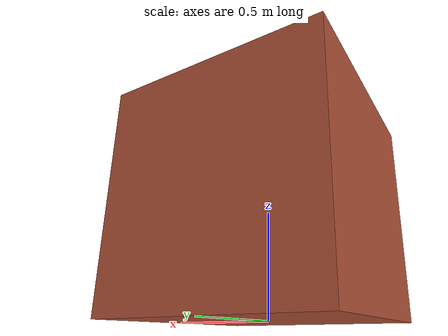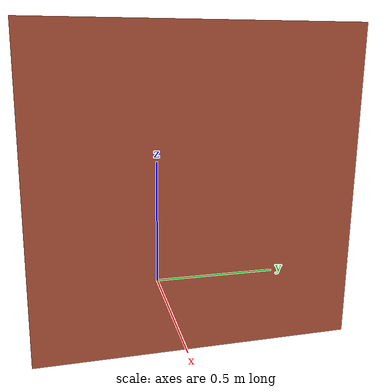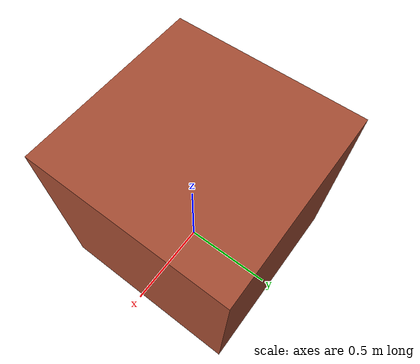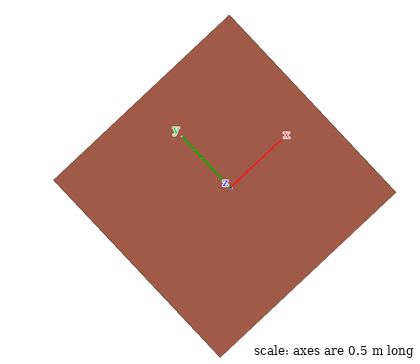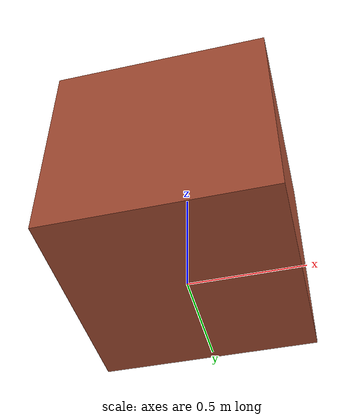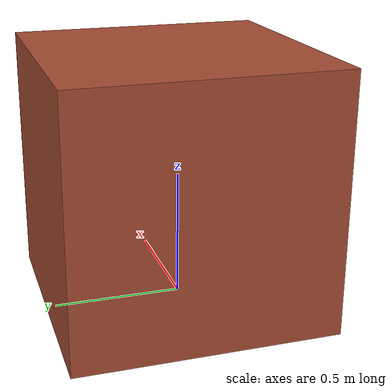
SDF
<?xml version='1.0'?>
<sdf version='1.7'>
  <model name='briks_tmp_new'>
    <pose>-0.02 0.035 0 0 -0 0</pose>
    <link name='Wall_0'>
      <collision name='Wall_0_Collision'>
        <geometry>
          <box>
            <size>1.01 1 1</size>
          </box>
        </geometry>
        <pose>0 0 0.5 0 -0 0</pose>
      </collision>
      <visual name='Wall_0_Visual'>
        <pose>0 0 0.5 0 -0 0</pose>
        <geometry>
          <box>
            <size>1.01 1 1</size>
          </box>
        </geometry>
        <material>
          <script>
            <uri>file://media/materials/scripts/gazebo.material</uri>
            <name>Gazebo/Bricks</name>
          </script>
          <ambient>1 1 1 1</ambient>
        </material>
        <meta>
          <layer>0</layer>
        </meta>
      </visual>
      <pose>-0 -0 0 0 -0 1.5708</pose>
    </link>
    <static>1</static>
  </model>
</sdf>
